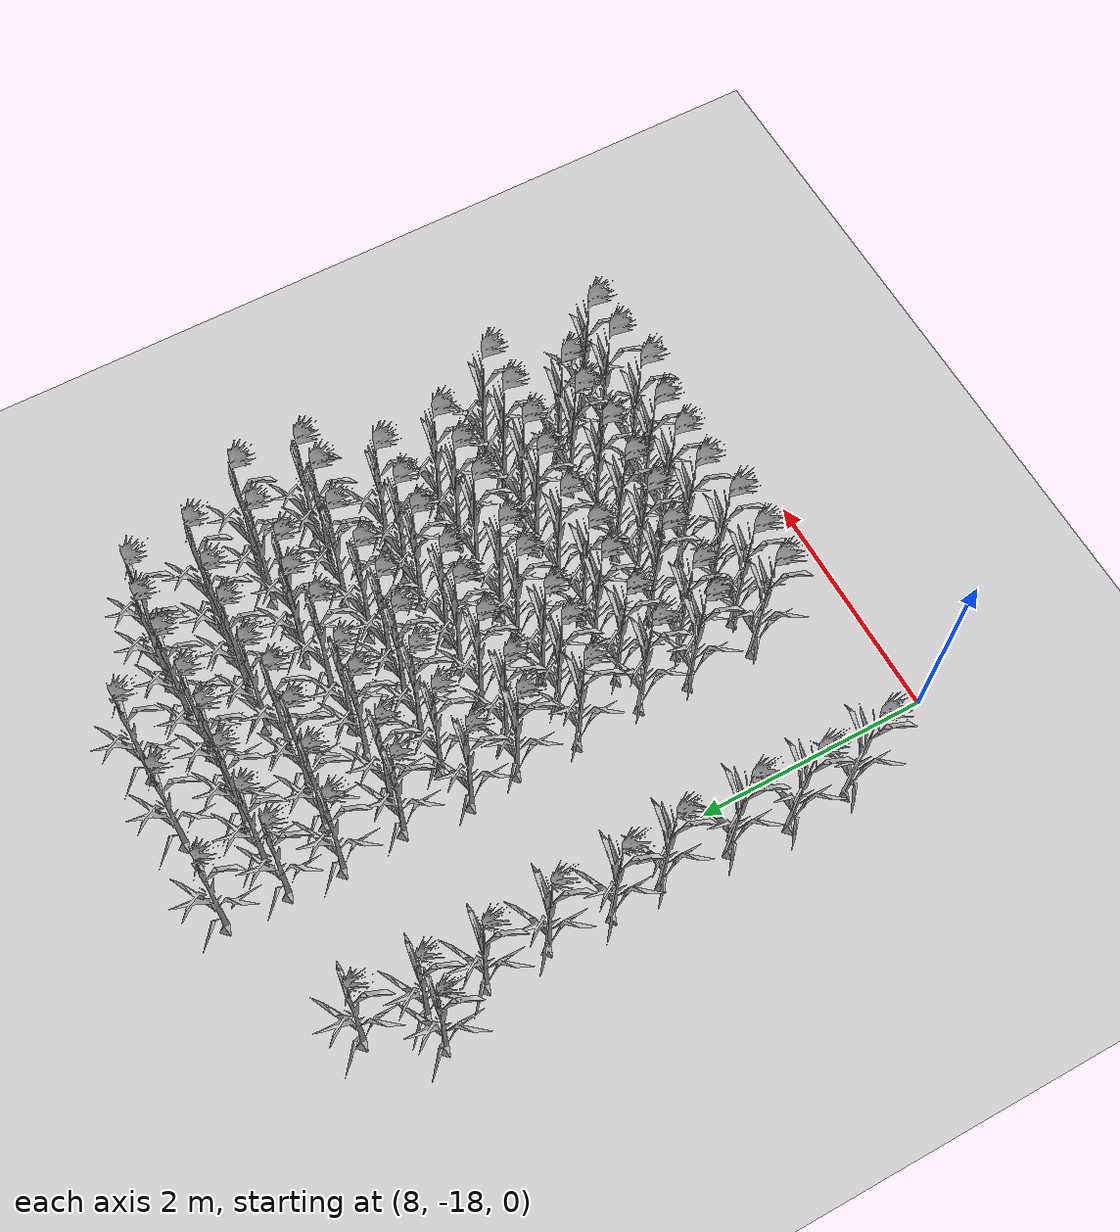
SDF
<sdf version="1.7">
 <world name="farmland_world">
  <model name="ground_plane">
   <static>1</static>
   <link name="link">
    <collision name="collision">
     <geometry><plane><normal>0 0 1</normal><size>40.0 40.0</size></plane></geometry>
     <surface><friction><ode><mu>100</mu><mu2>50</mu2></ode></friction></surface>
    </collision>
    <visual name="visual">
     <cast_shadows>0</cast_shadows>
     <geometry><plane><normal>0 0 1</normal><size>40.0 40.0</size></plane></geometry>
     <material>
      <script><uri>file://media/materials/scripts/gazebo.material</uri><name>Gazebo/Grey</name></script>
     </material>
    </visual>
   </link>
  </model>
  <model name="tree_3_1103">
   <static>1</static>
   <link name="link">
    <collision name="collision">
     <geometry><mesh><uri>model://Corn_low_poly/corn.obj</uri><scale>1 1 1</scale></mesh></geometry>
     <surface><friction><ode><mu>100</mu><mu2>50</mu2></ode></friction></surface>
    </collision>
    <visual name="visual">
     <geometry><mesh><uri>model://Corn_low_poly/corn.obj</uri><scale>1 1 1</scale></mesh></geometry>
    </visual>
   </link>
   <pose>7.378701759902179 -13.38830143295953 0 0 0 0</pose>
  </model>
  <model name="tree_3_1128">
   <static>1</static>
   <link name="link">
    <collision name="collision">
     <geometry><mesh><uri>model://Corn_low_poly/corn.obj</uri><scale>1 1 1</scale></mesh></geometry>
     <surface><friction><ode><mu>100</mu><mu2>50</mu2></ode></friction></surface>
    </collision>
    <visual name="visual">
     <geometry><mesh><uri>model://Corn_low_poly/corn.obj</uri><scale>1 1 1</scale></mesh></geometry>
    </visual>
   </link>
   <pose>7.702923000557419 -12.87638880298107 0 0 0 0</pose>
  </model>
  <model name="tree_3_1129">
   <static>1</static>
   <link name="link">
    <collision name="collision">
     <geometry><mesh><uri>model://Corn_low_poly/corn.obj</uri><scale>1 1 1</scale></mesh></geometry>
     <surface><friction><ode><mu>100</mu><mu2>50</mu2></ode></friction></surface>
    </collision>
    <visual name="visual">
     <geometry><mesh><uri>model://Corn_low_poly/corn.obj</uri><scale>1 1 1</scale></mesh></geometry>
    </visual>
   </link>
   <pose>7.64932809277339 -13.379077865878632 0 0 0 0</pose>
  </model>
  <model name="tree_3_1130">
   <static>1</static>
   <link name="link">
    <collision name="collision">
     <geometry><mesh><uri>model://Corn_low_poly/corn.obj</uri><scale>1 1 1</scale></mesh></geometry>
     <surface><friction><ode><mu>100</mu><mu2>50</mu2></ode></friction></surface>
    </collision>
    <visual name="visual">
     <geometry><mesh><uri>model://Corn_low_poly/corn.obj</uri><scale>1 1 1</scale></mesh></geometry>
    </visual>
   </link>
   <pose>7.63975142342553 -13.864861986941253 0 0 0 0</pose>
  </model>
  <model name="tree_3_1131">
   <static>1</static>
   <link name="link">
    <collision name="collision">
     <geometry><mesh><uri>model://Corn_low_poly/corn.obj</uri><scale>1 1 1</scale></mesh></geometry>
     <surface><friction><ode><mu>100</mu><mu2>50</mu2></ode></friction></surface>
    </collision>
    <visual name="visual">
     <geometry><mesh><uri>model://Corn_low_poly/corn.obj</uri><scale>1 1 1</scale></mesh></geometry>
    </visual>
   </link>
   <pose>7.671853378144586 -14.407517251463815 0 0 0 0</pose>
  </model>
  <model name="tree_3_1132">
   <static>1</static>
   <link name="link">
    <collision name="collision">
     <geometry><mesh><uri>model://Corn_low_poly/corn.obj</uri><scale>1 1 1</scale></mesh></geometry>
     <surface><friction><ode><mu>100</mu><mu2>50</mu2></ode></friction></surface>
    </collision>
    <visual name="visual">
     <geometry><mesh><uri>model://Corn_low_poly/corn.obj</uri><scale>1 1 1</scale></mesh></geometry>
    </visual>
   </link>
   <pose>7.659769551763717 -14.954185597951474 0 0 0 0</pose>
  </model>
  <model name="tree_3_1133">
   <static>1</static>
   <link name="link">
    <collision name="collision">
     <geometry><mesh><uri>model://Corn_low_poly/corn.obj</uri><scale>1 1 1</scale></mesh></geometry>
     <surface><friction><ode><mu>100</mu><mu2>50</mu2></ode></friction></surface>
    </collision>
    <visual name="visual">
     <geometry><mesh><uri>model://Corn_low_poly/corn.obj</uri><scale>1 1 1</scale></mesh></geometry>
    </visual>
   </link>
   <pose>7.700983458582436 -15.406346957540874 0 0 0 0</pose>
  </model>
  <model name="tree_3_1134">
   <static>1</static>
   <link name="link">
    <collision name="collision">
     <geometry><mesh><uri>model://Corn_low_poly/corn.obj</uri><scale>1 1 1</scale></mesh></geometry>
     <surface><friction><ode><mu>100</mu><mu2>50</mu2></ode></friction></surface>
    </collision>
    <visual name="visual">
     <geometry><mesh><uri>model://Corn_low_poly/corn.obj</uri><scale>1 1 1</scale></mesh></geometry>
    </visual>
   </link>
   <pose>7.678627286567806 -15.99333415270029 0 0 0 0</pose>
  </model>
  <model name="tree_3_1135">
   <static>1</static>
   <link name="link">
    <collision name="collision">
     <geometry><mesh><uri>model://Corn_low_poly/corn.obj</uri><scale>1 1 1</scale></mesh></geometry>
     <surface><friction><ode><mu>100</mu><mu2>50</mu2></ode></friction></surface>
    </collision>
    <visual name="visual">
     <geometry><mesh><uri>model://Corn_low_poly/corn.obj</uri><scale>1 1 1</scale></mesh></geometry>
    </visual>
   </link>
   <pose>7.630147635207661 -16.50651556029148 0 0 0 0</pose>
  </model>
  <model name="tree_3_1136">
   <static>1</static>
   <link name="link">
    <collision name="collision">
     <geometry><mesh><uri>model://Corn_low_poly/corn.obj</uri><scale>1 1 1</scale></mesh></geometry>
     <surface><friction><ode><mu>100</mu><mu2>50</mu2></ode></friction></surface>
    </collision>
    <visual name="visual">
     <geometry><mesh><uri>model://Corn_low_poly/corn.obj</uri><scale>1 1 1</scale></mesh></geometry>
    </visual>
   </link>
   <pose>7.649749195636984 -17.03707129243802 0 0 0 0</pose>
  </model>
  <model name="tree_3_1153">
   <static>1</static>
   <link name="link">
    <collision name="collision">
     <geometry><mesh><uri>model://Corn_low_poly/corn.obj</uri><scale>1 1 1</scale></mesh></geometry>
     <surface><friction><ode><mu>100</mu><mu2>50</mu2></ode></friction></surface>
    </collision>
    <visual name="visual">
     <geometry><mesh><uri>model://Corn_low_poly/corn.obj</uri><scale>1 1 1</scale></mesh></geometry>
    </visual>
   </link>
   <pose>8.975586912585443 -12.362388512783566 0 0 0 0</pose>
  </model>
  <model name="tree_3_1154">
   <static>1</static>
   <link name="link">
    <collision name="collision">
     <geometry><mesh><uri>model://Corn_low_poly/corn.obj</uri><scale>1 1 1</scale></mesh></geometry>
     <surface><friction><ode><mu>100</mu><mu2>50</mu2></ode></friction></surface>
    </collision>
    <visual name="visual">
     <geometry><mesh><uri>model://Corn_low_poly/corn.obj</uri><scale>1 1 1</scale></mesh></geometry>
    </visual>
   </link>
   <pose>8.978883979321976 -12.882479470782153 0 0 0 0</pose>
  </model>
  <model name="tree_3_1155">
   <static>1</static>
   <link name="link">
    <collision name="collision">
     <geometry><mesh><uri>model://Corn_low_poly/corn.obj</uri><scale>1 1 1</scale></mesh></geometry>
     <surface><friction><ode><mu>100</mu><mu2>50</mu2></ode></friction></surface>
    </collision>
    <visual name="visual">
     <geometry><mesh><uri>model://Corn_low_poly/corn.obj</uri><scale>1 1 1</scale></mesh></geometry>
    </visual>
   </link>
   <pose>8.95248846145552 -13.33096620263656 0 0 0 0</pose>
  </model>
  <model name="tree_3_1156">
   <static>1</static>
   <link name="link">
    <collision name="collision">
     <geometry><mesh><uri>model://Corn_low_poly/corn.obj</uri><scale>1 1 1</scale></mesh></geometry>
     <surface><friction><ode><mu>100</mu><mu2>50</mu2></ode></friction></surface>
    </collision>
    <visual name="visual">
     <geometry><mesh><uri>model://Corn_low_poly/corn.obj</uri><scale>1 1 1</scale></mesh></geometry>
    </visual>
   </link>
   <pose>9.00575841853645 -13.875872442490412 0 0 0 0</pose>
  </model>
  <model name="tree_3_1157">
   <static>1</static>
   <link name="link">
    <collision name="collision">
     <geometry><mesh><uri>model://Corn_low_poly/corn.obj</uri><scale>1 1 1</scale></mesh></geometry>
     <surface><friction><ode><mu>100</mu><mu2>50</mu2></ode></friction></surface>
    </collision>
    <visual name="visual">
     <geometry><mesh><uri>model://Corn_low_poly/corn.obj</uri><scale>1 1 1</scale></mesh></geometry>
    </visual>
   </link>
   <pose>8.951890482372919 -14.437300516262798 0 0 0 0</pose>
  </model>
  <model name="tree_3_1158">
   <static>1</static>
   <link name="link">
    <collision name="collision">
     <geometry><mesh><uri>model://Corn_low_poly/corn.obj</uri><scale>1 1 1</scale></mesh></geometry>
     <surface><friction><ode><mu>100</mu><mu2>50</mu2></ode></friction></surface>
    </collision>
    <visual name="visual">
     <geometry><mesh><uri>model://Corn_low_poly/corn.obj</uri><scale>1 1 1</scale></mesh></geometry>
    </visual>
   </link>
   <pose>9.008591688866538 -14.870986380184416 0 0 0 0</pose>
  </model>
  <model name="tree_3_1159">
   <static>1</static>
   <link name="link">
    <collision name="collision">
     <geometry><mesh><uri>model://Corn_low_poly/corn.obj</uri><scale>1 1 1</scale></mesh></geometry>
     <surface><friction><ode><mu>100</mu><mu2>50</mu2></ode></friction></surface>
    </collision>
    <visual name="visual">
     <geometry><mesh><uri>model://Corn_low_poly/corn.obj</uri><scale>1 1 1</scale></mesh></geometry>
    </visual>
   </link>
   <pose>9.004525325089675 -15.415883972888365 0 0 0 0</pose>
  </model>
  <model name="tree_3_1160">
   <static>1</static>
   <link name="link">
    <collision name="collision">
     <geometry><mesh><uri>model://Corn_low_poly/corn.obj</uri><scale>1 1 1</scale></mesh></geometry>
     <surface><friction><ode><mu>100</mu><mu2>50</mu2></ode></friction></surface>
    </collision>
    <visual name="visual">
     <geometry><mesh><uri>model://Corn_low_poly/corn.obj</uri><scale>1 1 1</scale></mesh></geometry>
    </visual>
   </link>
   <pose>9.040939664613214 -16.000283766380416 0 0 0 0</pose>
  </model>
  <model name="tree_3_1161">
   <static>1</static>
   <link name="link">
    <collision name="collision">
     <geometry><mesh><uri>model://Corn_low_poly/corn.obj</uri><scale>1 1 1</scale></mesh></geometry>
     <surface><friction><ode><mu>100</mu><mu2>50</mu2></ode></friction></surface>
    </collision>
    <visual name="visual">
     <geometry><mesh><uri>model://Corn_low_poly/corn.obj</uri><scale>1 1 1</scale></mesh></geometry>
    </visual>
   </link>
   <pose>9.025168318386138 -16.441049287200546 0 0 0 0</pose>
  </model>
  <model name="tree_3_1162">
   <static>1</static>
   <link name="link">
    <collision name="collision">
     <geometry><mesh><uri>model://Corn_low_poly/corn.obj</uri><scale>1 1 1</scale></mesh></geometry>
     <surface><friction><ode><mu>100</mu><mu2>50</mu2></ode></friction></surface>
    </collision>
    <visual name="visual">
     <geometry><mesh><uri>model://Corn_low_poly/corn.obj</uri><scale>1 1 1</scale></mesh></geometry>
    </visual>
   </link>
   <pose>9.030153301210214 -17.037372775325718 0 0 0 0</pose>
  </model>
  <model name="tree_3_1180">
   <static>1</static>
   <link name="link">
    <collision name="collision">
     <geometry><mesh><uri>model://Corn_low_poly/corn.obj</uri><scale>1 1 1</scale></mesh></geometry>
     <surface><friction><ode><mu>100</mu><mu2>50</mu2></ode></friction></surface>
    </collision>
    <visual name="visual">
     <geometry><mesh><uri>model://Corn_low_poly/corn.obj</uri><scale>1 1 1</scale></mesh></geometry>
    </visual>
   </link>
   <pose>9.291330220509577 -12.833845377604957 0 0 0 0</pose>
  </model>
  <model name="tree_3_1181">
   <static>1</static>
   <link name="link">
    <collision name="collision">
     <geometry><mesh><uri>model://Corn_low_poly/corn.obj</uri><scale>1 1 1</scale></mesh></geometry>
     <surface><friction><ode><mu>100</mu><mu2>50</mu2></ode></friction></surface>
    </collision>
    <visual name="visual">
     <geometry><mesh><uri>model://Corn_low_poly/corn.obj</uri><scale>1 1 1</scale></mesh></geometry>
    </visual>
   </link>
   <pose>9.345753882591662 -13.36934704679387 0 0 0 0</pose>
  </model>
  <model name="tree_3_1182">
   <static>1</static>
   <link name="link">
    <collision name="collision">
     <geometry><mesh><uri>model://Corn_low_poly/corn.obj</uri><scale>1 1 1</scale></mesh></geometry>
     <surface><friction><ode><mu>100</mu><mu2>50</mu2></ode></friction></surface>
    </collision>
    <visual name="visual">
     <geometry><mesh><uri>model://Corn_low_poly/corn.obj</uri><scale>1 1 1</scale></mesh></geometry>
    </visual>
   </link>
   <pose>9.303003250301266 -13.909716582781176 0 0 0 0</pose>
  </model>
  <model name="tree_3_1183">
   <static>1</static>
   <link name="link">
    <collision name="collision">
     <geometry><mesh><uri>model://Corn_low_poly/corn.obj</uri><scale>1 1 1</scale></mesh></geometry>
     <surface><friction><ode><mu>100</mu><mu2>50</mu2></ode></friction></surface>
    </collision>
    <visual name="visual">
     <geometry><mesh><uri>model://Corn_low_poly/corn.obj</uri><scale>1 1 1</scale></mesh></geometry>
    </visual>
   </link>
   <pose>9.322143877949594 -14.361908686777012 0 0 0 0</pose>
  </model>
  <model name="tree_3_1184">
   <static>1</static>
   <link name="link">
    <collision name="collision">
     <geometry><mesh><uri>model://Corn_low_poly/corn.obj</uri><scale>1 1 1</scale></mesh></geometry>
     <surface><friction><ode><mu>100</mu><mu2>50</mu2></ode></friction></surface>
    </collision>
    <visual name="visual">
     <geometry><mesh><uri>model://Corn_low_poly/corn.obj</uri><scale>1 1 1</scale></mesh></geometry>
    </visual>
   </link>
   <pose>9.302707706335825 -14.931337907866308 0 0 0 0</pose>
  </model>
  <model name="tree_3_1185">
   <static>1</static>
   <link name="link">
    <collision name="collision">
     <geometry><mesh><uri>model://Corn_low_poly/corn.obj</uri><scale>1 1 1</scale></mesh></geometry>
     <surface><friction><ode><mu>100</mu><mu2>50</mu2></ode></friction></surface>
    </collision>
    <visual name="visual">
     <geometry><mesh><uri>model://Corn_low_poly/corn.obj</uri><scale>1 1 1</scale></mesh></geometry>
    </visual>
   </link>
   <pose>9.362608397021965 -15.43238439574567 0 0 0 0</pose>
  </model>
  <model name="tree_3_1186">
   <static>1</static>
   <link name="link">
    <collision name="collision">
     <geometry><mesh><uri>model://Corn_low_poly/corn.obj</uri><scale>1 1 1</scale></mesh></geometry>
     <surface><friction><ode><mu>100</mu><mu2>50</mu2></ode></friction></surface>
    </collision>
    <visual name="visual">
     <geometry><mesh><uri>model://Corn_low_poly/corn.obj</uri><scale>1 1 1</scale></mesh></geometry>
    </visual>
   </link>
   <pose>9.34573784460411 -15.963516921287644 0 0 0 0</pose>
  </model>
  <model name="tree_3_1187">
   <static>1</static>
   <link name="link">
    <collision name="collision">
     <geometry><mesh><uri>model://Corn_low_poly/corn.obj</uri><scale>1 1 1</scale></mesh></geometry>
     <surface><friction><ode><mu>100</mu><mu2>50</mu2></ode></friction></surface>
    </collision>
    <visual name="visual">
     <geometry><mesh><uri>model://Corn_low_poly/corn.obj</uri><scale>1 1 1</scale></mesh></geometry>
    </visual>
   </link>
   <pose>9.301625487395604 -16.496236525934833 0 0 0 0</pose>
  </model>
  <model name="tree_3_1188">
   <static>1</static>
   <link name="link">
    <collision name="collision">
     <geometry><mesh><uri>model://Corn_low_poly/corn.obj</uri><scale>1 1 1</scale></mesh></geometry>
     <surface><friction><ode><mu>100</mu><mu2>50</mu2></ode></friction></surface>
    </collision>
    <visual name="visual">
     <geometry><mesh><uri>model://Corn_low_poly/corn.obj</uri><scale>1 1 1</scale></mesh></geometry>
    </visual>
   </link>
   <pose>9.337785703948304 -17.043964450039102 0 0 0 0</pose>
  </model>
  <model name="tree_3_1205">
   <static>1</static>
   <link name="link">
    <collision name="collision">
     <geometry><mesh><uri>model://Corn_low_poly/corn.obj</uri><scale>1 1 1</scale></mesh></geometry>
     <surface><friction><ode><mu>100</mu><mu2>50</mu2></ode></friction></surface>
    </collision>
    <visual name="visual">
     <geometry><mesh><uri>model://Corn_low_poly/corn.obj</uri><scale>1 1 1</scale></mesh></geometry>
    </visual>
   </link>
   <pose>9.719776114390806 -12.357959841589789 0 0 0 0</pose>
  </model>
  <model name="tree_3_1206">
   <static>1</static>
   <link name="link">
    <collision name="collision">
     <geometry><mesh><uri>model://Corn_low_poly/corn.obj</uri><scale>1 1 1</scale></mesh></geometry>
     <surface><friction><ode><mu>100</mu><mu2>50</mu2></ode></friction></surface>
    </collision>
    <visual name="visual">
     <geometry><mesh><uri>model://Corn_low_poly/corn.obj</uri><scale>1 1 1</scale></mesh></geometry>
    </visual>
   </link>
   <pose>9.657729673701187 -12.83947844691618 0 0 0 0</pose>
  </model>
  <model name="tree_3_1207">
   <static>1</static>
   <link name="link">
    <collision name="collision">
     <geometry><mesh><uri>model://Corn_low_poly/corn.obj</uri><scale>1 1 1</scale></mesh></geometry>
     <surface><friction><ode><mu>100</mu><mu2>50</mu2></ode></friction></surface>
    </collision>
    <visual name="visual">
     <geometry><mesh><uri>model://Corn_low_poly/corn.obj</uri><scale>1 1 1</scale></mesh></geometry>
    </visual>
   </link>
   <pose>9.715019103552539 -13.401588764188242 0 0 0 0</pose>
  </model>
  <model name="tree_3_1208">
   <static>1</static>
   <link name="link">
    <collision name="collision">
     <geometry><mesh><uri>model://Corn_low_poly/corn.obj</uri><scale>1 1 1</scale></mesh></geometry>
     <surface><friction><ode><mu>100</mu><mu2>50</mu2></ode></friction></surface>
    </collision>
    <visual name="visual">
     <geometry><mesh><uri>model://Corn_low_poly/corn.obj</uri><scale>1 1 1</scale></mesh></geometry>
    </visual>
   </link>
   <pose>9.716801871659479 -13.913959102238339 0 0 0 0</pose>
  </model>
  <model name="tree_3_1209">
   <static>1</static>
   <link name="link">
    <collision name="collision">
     <geometry><mesh><uri>model://Corn_low_poly/corn.obj</uri><scale>1 1 1</scale></mesh></geometry>
     <surface><friction><ode><mu>100</mu><mu2>50</mu2></ode></friction></surface>
    </collision>
    <visual name="visual">
     <geometry><mesh><uri>model://Corn_low_poly/corn.obj</uri><scale>1 1 1</scale></mesh></geometry>
    </visual>
   </link>
   <pose>9.681149209510716 -14.37191004799527 0 0 0 0</pose>
  </model>
  <model name="tree_3_1210">
   <static>1</static>
   <link name="link">
    <collision name="collision">
     <geometry><mesh><uri>model://Corn_low_poly/corn.obj</uri><scale>1 1 1</scale></mesh></geometry>
     <surface><friction><ode><mu>100</mu><mu2>50</mu2></ode></friction></surface>
    </collision>
    <visual name="visual">
     <geometry><mesh><uri>model://Corn_low_poly/corn.obj</uri><scale>1 1 1</scale></mesh></geometry>
    </visual>
   </link>
   <pose>9.679436515067644 -14.914865474652409 0 0 0 0</pose>
  </model>
  <model name="tree_3_1211">
   <static>1</static>
   <link name="link">
    <collision name="collision">
     <geometry><mesh><uri>model://Corn_low_poly/corn.obj</uri><scale>1 1 1</scale></mesh></geometry>
     <surface><friction><ode><mu>100</mu><mu2>50</mu2></ode></friction></surface>
    </collision>
    <visual name="visual">
     <geometry><mesh><uri>model://Corn_low_poly/corn.obj</uri><scale>1 1 1</scale></mesh></geometry>
    </visual>
   </link>
   <pose>9.632794775832346 -15.441726402389005 0 0 0 0</pose>
  </model>
  <model name="tree_3_1212">
   <static>1</static>
   <link name="link">
    <collision name="collision">
     <geometry><mesh><uri>model://Corn_low_poly/corn.obj</uri><scale>1 1 1</scale></mesh></geometry>
     <surface><friction><ode><mu>100</mu><mu2>50</mu2></ode></friction></surface>
    </collision>
    <visual name="visual">
     <geometry><mesh><uri>model://Corn_low_poly/corn.obj</uri><scale>1 1 1</scale></mesh></geometry>
    </visual>
   </link>
   <pose>9.690469816799082 -15.949957015310028 0 0 0 0</pose>
  </model>
  <model name="tree_3_1213">
   <static>1</static>
   <link name="link">
    <collision name="collision">
     <geometry><mesh><uri>model://Corn_low_poly/corn.obj</uri><scale>1 1 1</scale></mesh></geometry>
     <surface><friction><ode><mu>100</mu><mu2>50</mu2></ode></friction></surface>
    </collision>
    <visual name="visual">
     <geometry><mesh><uri>model://Corn_low_poly/corn.obj</uri><scale>1 1 1</scale></mesh></geometry>
    </visual>
   </link>
   <pose>9.681412974715126 -16.46288133095108 0 0 0 0</pose>
  </model>
  <model name="tree_3_1214">
   <static>1</static>
   <link name="link">
    <collision name="collision">
     <geometry><mesh><uri>model://Corn_low_poly/corn.obj</uri><scale>1 1 1</scale></mesh></geometry>
     <surface><friction><ode><mu>100</mu><mu2>50</mu2></ode></friction></surface>
    </collision>
    <visual name="visual">
     <geometry><mesh><uri>model://Corn_low_poly/corn.obj</uri><scale>1 1 1</scale></mesh></geometry>
    </visual>
   </link>
   <pose>9.681944578541158 -17.043923196566908 0 0 0 0</pose>
  </model>
  <model name="tree_3_1232">
   <static>1</static>
   <link name="link">
    <collision name="collision">
     <geometry><mesh><uri>model://Corn_low_poly/corn.obj</uri><scale>1 1 1</scale></mesh></geometry>
     <surface><friction><ode><mu>100</mu><mu2>50</mu2></ode></friction></surface>
    </collision>
    <visual name="visual">
     <geometry><mesh><uri>model://Corn_low_poly/corn.obj</uri><scale>1 1 1</scale></mesh></geometry>
    </visual>
   </link>
   <pose>9.998616454929936 -12.856486062136586 0 0 0 0</pose>
  </model>
  <model name="tree_3_1233">
   <static>1</static>
   <link name="link">
    <collision name="collision">
     <geometry><mesh><uri>model://Corn_low_poly/corn.obj</uri><scale>1 1 1</scale></mesh></geometry>
     <surface><friction><ode><mu>100</mu><mu2>50</mu2></ode></friction></surface>
    </collision>
    <visual name="visual">
     <geometry><mesh><uri>model://Corn_low_poly/corn.obj</uri><scale>1 1 1</scale></mesh></geometry>
    </visual>
   </link>
   <pose>10.043198690969216 -13.398301008086223 0 0 0 0</pose>
  </model>
  <model name="tree_3_1234">
   <static>1</static>
   <link name="link">
    <collision name="collision">
     <geometry><mesh><uri>model://Corn_low_poly/corn.obj</uri><scale>1 1 1</scale></mesh></geometry>
     <surface><friction><ode><mu>100</mu><mu2>50</mu2></ode></friction></surface>
    </collision>
    <visual name="visual">
     <geometry><mesh><uri>model://Corn_low_poly/corn.obj</uri><scale>1 1 1</scale></mesh></geometry>
    </visual>
   </link>
   <pose>9.971413661608134 -13.920841385990373 0 0 0 0</pose>
  </model>
  <model name="tree_3_1235">
   <static>1</static>
   <link name="link">
    <collision name="collision">
     <geometry><mesh><uri>model://Corn_low_poly/corn.obj</uri><scale>1 1 1</scale></mesh></geometry>
     <surface><friction><ode><mu>100</mu><mu2>50</mu2></ode></friction></surface>
    </collision>
    <visual name="visual">
     <geometry><mesh><uri>model://Corn_low_poly/corn.obj</uri><scale>1 1 1</scale></mesh></geometry>
    </visual>
   </link>
   <pose>10.022751569600507 -14.405204276917376 0 0 0 0</pose>
  </model>
  <model name="tree_3_1236">
   <static>1</static>
   <link name="link">
    <collision name="collision">
     <geometry><mesh><uri>model://Corn_low_poly/corn.obj</uri><scale>1 1 1</scale></mesh></geometry>
     <surface><friction><ode><mu>100</mu><mu2>50</mu2></ode></friction></surface>
    </collision>
    <visual name="visual">
     <geometry><mesh><uri>model://Corn_low_poly/corn.obj</uri><scale>1 1 1</scale></mesh></geometry>
    </visual>
   </link>
   <pose>10.020232602866686 -14.904912444028811 0 0 0 0</pose>
  </model>
  <model name="tree_3_1237">
   <static>1</static>
   <link name="link">
    <collision name="collision">
     <geometry><mesh><uri>model://Corn_low_poly/corn.obj</uri><scale>1 1 1</scale></mesh></geometry>
     <surface><friction><ode><mu>100</mu><mu2>50</mu2></ode></friction></surface>
    </collision>
    <visual name="visual">
     <geometry><mesh><uri>model://Corn_low_poly/corn.obj</uri><scale>1 1 1</scale></mesh></geometry>
    </visual>
   </link>
   <pose>10.00151311310209 -15.413168248070386 0 0 0 0</pose>
  </model>
  <model name="tree_3_1238">
   <static>1</static>
   <link name="link">
    <collision name="collision">
     <geometry><mesh><uri>model://Corn_low_poly/corn.obj</uri><scale>1 1 1</scale></mesh></geometry>
     <surface><friction><ode><mu>100</mu><mu2>50</mu2></ode></friction></surface>
    </collision>
    <visual name="visual">
     <geometry><mesh><uri>model://Corn_low_poly/corn.obj</uri><scale>1 1 1</scale></mesh></geometry>
    </visual>
   </link>
   <pose>9.955963310983963 -15.992381229818935 0 0 0 0</pose>
  </model>
  <model name="tree_3_1239">
   <static>1</static>
   <link name="link">
    <collision name="collision">
     <geometry><mesh><uri>model://Corn_low_poly/corn.obj</uri><scale>1 1 1</scale></mesh></geometry>
     <surface><friction><ode><mu>100</mu><mu2>50</mu2></ode></friction></surface>
    </collision>
    <visual name="visual">
     <geometry><mesh><uri>model://Corn_low_poly/corn.obj</uri><scale>1 1 1</scale></mesh></geometry>
    </visual>
   </link>
   <pose>10.016162681959523 -16.52963999753397 0 0 0 0</pose>
  </model>
  <model name="tree_3_1240">
   <static>1</static>
   <link name="link">
    <collision name="collision">
     <geometry><mesh><uri>model://Corn_low_poly/corn.obj</uri><scale>1 1 1</scale></mesh></geometry>
     <surface><friction><ode><mu>100</mu><mu2>50</mu2></ode></friction></surface>
    </collision>
    <visual name="visual">
     <geometry><mesh><uri>model://Corn_low_poly/corn.obj</uri><scale>1 1 1</scale></mesh></geometry>
    </visual>
   </link>
   <pose>10.0262666257036 -16.95803157726904 0 0 0 0</pose>
  </model>
  <model name="tree_3_1257">
   <static>1</static>
   <link name="link">
    <collision name="collision">
     <geometry><mesh><uri>model://Corn_low_poly/corn.obj</uri><scale>1 1 1</scale></mesh></geometry>
     <surface><friction><ode><mu>100</mu><mu2>50</mu2></ode></friction></surface>
    </collision>
    <visual name="visual">
     <geometry><mesh><uri>model://Corn_low_poly/corn.obj</uri><scale>1 1 1</scale></mesh></geometry>
    </visual>
   </link>
   <pose>10.341827796272945 -12.353889810509028 0 0 0 0</pose>
  </model>
  <model name="tree_3_1258">
   <static>1</static>
   <link name="link">
    <collision name="collision">
     <geometry><mesh><uri>model://Corn_low_poly/corn.obj</uri><scale>1 1 1</scale></mesh></geometry>
     <surface><friction><ode><mu>100</mu><mu2>50</mu2></ode></friction></surface>
    </collision>
    <visual name="visual">
     <geometry><mesh><uri>model://Corn_low_poly/corn.obj</uri><scale>1 1 1</scale></mesh></geometry>
    </visual>
   </link>
   <pose>10.296207072787684 -12.844282392834812 0 0 0 0</pose>
  </model>
  <model name="tree_3_1259">
   <static>1</static>
   <link name="link">
    <collision name="collision">
     <geometry><mesh><uri>model://Corn_low_poly/corn.obj</uri><scale>1 1 1</scale></mesh></geometry>
     <surface><friction><ode><mu>100</mu><mu2>50</mu2></ode></friction></surface>
    </collision>
    <visual name="visual">
     <geometry><mesh><uri>model://Corn_low_poly/corn.obj</uri><scale>1 1 1</scale></mesh></geometry>
    </visual>
   </link>
   <pose>10.302016931765854 -13.327006501012418 0 0 0 0</pose>
  </model>
  <model name="tree_3_1260">
   <static>1</static>
   <link name="link">
    <collision name="collision">
     <geometry><mesh><uri>model://Corn_low_poly/corn.obj</uri><scale>1 1 1</scale></mesh></geometry>
     <surface><friction><ode><mu>100</mu><mu2>50</mu2></ode></friction></surface>
    </collision>
    <visual name="visual">
     <geometry><mesh><uri>model://Corn_low_poly/corn.obj</uri><scale>1 1 1</scale></mesh></geometry>
    </visual>
   </link>
   <pose>10.377016158447814 -13.9275828865109 0 0 0 0</pose>
  </model>
  <model name="tree_3_1261">
   <static>1</static>
   <link name="link">
    <collision name="collision">
     <geometry><mesh><uri>model://Corn_low_poly/corn.obj</uri><scale>1 1 1</scale></mesh></geometry>
     <surface><friction><ode><mu>100</mu><mu2>50</mu2></ode></friction></surface>
    </collision>
    <visual name="visual">
     <geometry><mesh><uri>model://Corn_low_poly/corn.obj</uri><scale>1 1 1</scale></mesh></geometry>
    </visual>
   </link>
   <pose>10.33256383477953 -14.434544517036903 0 0 0 0</pose>
  </model>
  <model name="tree_3_1262">
   <static>1</static>
   <link name="link">
    <collision name="collision">
     <geometry><mesh><uri>model://Corn_low_poly/corn.obj</uri><scale>1 1 1</scale></mesh></geometry>
     <surface><friction><ode><mu>100</mu><mu2>50</mu2></ode></friction></surface>
    </collision>
    <visual name="visual">
     <geometry><mesh><uri>model://Corn_low_poly/corn.obj</uri><scale>1 1 1</scale></mesh></geometry>
    </visual>
   </link>
   <pose>10.289665803360881 -14.93133813459558 0 0 0 0</pose>
  </model>
  <model name="tree_3_1263">
   <static>1</static>
   <link name="link">
    <collision name="collision">
     <geometry><mesh><uri>model://Corn_low_poly/corn.obj</uri><scale>1 1 1</scale></mesh></geometry>
     <surface><friction><ode><mu>100</mu><mu2>50</mu2></ode></friction></surface>
    </collision>
    <visual name="visual">
     <geometry><mesh><uri>model://Corn_low_poly/corn.obj</uri><scale>1 1 1</scale></mesh></geometry>
    </visual>
   </link>
   <pose>10.281224417163456 -15.420042105255254 0 0 0 0</pose>
  </model>
  <model name="tree_3_1264">
   <static>1</static>
   <link name="link">
    <collision name="collision">
     <geometry><mesh><uri>model://Corn_low_poly/corn.obj</uri><scale>1 1 1</scale></mesh></geometry>
     <surface><friction><ode><mu>100</mu><mu2>50</mu2></ode></friction></surface>
    </collision>
    <visual name="visual">
     <geometry><mesh><uri>model://Corn_low_poly/corn.obj</uri><scale>1 1 1</scale></mesh></geometry>
    </visual>
   </link>
   <pose>10.292648210656147 -15.946042814529132 0 0 0 0</pose>
  </model>
  <model name="tree_3_1265">
   <static>1</static>
   <link name="link">
    <collision name="collision">
     <geometry><mesh><uri>model://Corn_low_poly/corn.obj</uri><scale>1 1 1</scale></mesh></geometry>
     <surface><friction><ode><mu>100</mu><mu2>50</mu2></ode></friction></surface>
    </collision>
    <visual name="visual">
     <geometry><mesh><uri>model://Corn_low_poly/corn.obj</uri><scale>1 1 1</scale></mesh></geometry>
    </visual>
   </link>
   <pose>10.322281679996875 -16.516683371710037 0 0 0 0</pose>
  </model>
  <model name="tree_3_1266">
   <static>1</static>
   <link name="link">
    <collision name="collision">
     <geometry><mesh><uri>model://Corn_low_poly/corn.obj</uri><scale>1 1 1</scale></mesh></geometry>
     <surface><friction><ode><mu>100</mu><mu2>50</mu2></ode></friction></surface>
    </collision>
    <visual name="visual">
     <geometry><mesh><uri>model://Corn_low_poly/corn.obj</uri><scale>1 1 1</scale></mesh></geometry>
    </visual>
   </link>
   <pose>10.338745129035356 -16.95997258403757 0 0 0 0</pose>
  </model>
  <model name="tree_3_1284">
   <static>1</static>
   <link name="link">
    <collision name="collision">
     <geometry><mesh><uri>model://Corn_low_poly/corn.obj</uri><scale>1 1 1</scale></mesh></geometry>
     <surface><friction><ode><mu>100</mu><mu2>50</mu2></ode></friction></surface>
    </collision>
    <visual name="visual">
     <geometry><mesh><uri>model://Corn_low_poly/corn.obj</uri><scale>1 1 1</scale></mesh></geometry>
    </visual>
   </link>
   <pose>10.668020648116473 -12.82282002799339 0 0 0 0</pose>
  </model>
  <model name="tree_3_1285">
   <static>1</static>
   <link name="link">
    <collision name="collision">
     <geometry><mesh><uri>model://Corn_low_poly/corn.obj</uri><scale>1 1 1</scale></mesh></geometry>
     <surface><friction><ode><mu>100</mu><mu2>50</mu2></ode></friction></surface>
    </collision>
    <visual name="visual">
     <geometry><mesh><uri>model://Corn_low_poly/corn.obj</uri><scale>1 1 1</scale></mesh></geometry>
    </visual>
   </link>
   <pose>10.667282097230231 -13.333253920365813 0 0 0 0</pose>
  </model>
  <model name="tree_3_1286">
   <static>1</static>
   <link name="link">
    <collision name="collision">
     <geometry><mesh><uri>model://Corn_low_poly/corn.obj</uri><scale>1 1 1</scale></mesh></geometry>
     <surface><friction><ode><mu>100</mu><mu2>50</mu2></ode></friction></surface>
    </collision>
    <visual name="visual">
     <geometry><mesh><uri>model://Corn_low_poly/corn.obj</uri><scale>1 1 1</scale></mesh></geometry>
    </visual>
   </link>
   <pose>10.667837879630929 -13.847418599265838 0 0 0 0</pose>
  </model>
  <model name="tree_3_1287">
   <static>1</static>
   <link name="link">
    <collision name="collision">
     <geometry><mesh><uri>model://Corn_low_poly/corn.obj</uri><scale>1 1 1</scale></mesh></geometry>
     <surface><friction><ode><mu>100</mu><mu2>50</mu2></ode></friction></surface>
    </collision>
    <visual name="visual">
     <geometry><mesh><uri>model://Corn_low_poly/corn.obj</uri><scale>1 1 1</scale></mesh></geometry>
    </visual>
   </link>
   <pose>10.626113161333372 -14.405097279688885 0 0 0 0</pose>
  </model>
  <model name="tree_3_1288">
   <static>1</static>
   <link name="link">
    <collision name="collision">
     <geometry><mesh><uri>model://Corn_low_poly/corn.obj</uri><scale>1 1 1</scale></mesh></geometry>
     <surface><friction><ode><mu>100</mu><mu2>50</mu2></ode></friction></surface>
    </collision>
    <visual name="visual">
     <geometry><mesh><uri>model://Corn_low_poly/corn.obj</uri><scale>1 1 1</scale></mesh></geometry>
    </visual>
   </link>
   <pose>10.681448305601368 -14.896547203087486 0 0 0 0</pose>
  </model>
  <model name="tree_3_1289">
   <static>1</static>
   <link name="link">
    <collision name="collision">
     <geometry><mesh><uri>model://Corn_low_poly/corn.obj</uri><scale>1 1 1</scale></mesh></geometry>
     <surface><friction><ode><mu>100</mu><mu2>50</mu2></ode></friction></surface>
    </collision>
    <visual name="visual">
     <geometry><mesh><uri>model://Corn_low_poly/corn.obj</uri><scale>1 1 1</scale></mesh></geometry>
    </visual>
   </link>
   <pose>10.712334454606271 -15.427546657148117 0 0 0 0</pose>
  </model>
  <model name="tree_3_1290">
   <static>1</static>
   <link name="link">
    <collision name="collision">
     <geometry><mesh><uri>model://Corn_low_poly/corn.obj</uri><scale>1 1 1</scale></mesh></geometry>
     <surface><friction><ode><mu>100</mu><mu2>50</mu2></ode></friction></surface>
    </collision>
    <visual name="visual">
     <geometry><mesh><uri>model://Corn_low_poly/corn.obj</uri><scale>1 1 1</scale></mesh></geometry>
    </visual>
   </link>
   <pose>10.675721418342198 -15.959534690640307 0 0 0 0</pose>
  </model>
  <model name="tree_3_1291">
   <static>1</static>
   <link name="link">
    <collision name="collision">
     <geometry><mesh><uri>model://Corn_low_poly/corn.obj</uri><scale>1 1 1</scale></mesh></geometry>
     <surface><friction><ode><mu>100</mu><mu2>50</mu2></ode></friction></surface>
    </collision>
    <visual name="visual">
     <geometry><mesh><uri>model://Corn_low_poly/corn.obj</uri><scale>1 1 1</scale></mesh></geometry>
    </visual>
   </link>
   <pose>10.675827225114098 -16.52153140392732 0 0 0 0</pose>
  </model>
  <model name="tree_3_1292">
   <static>1</static>
   <link name="link">
    <collision name="collision">
     <geometry><mesh><uri>model://Corn_low_poly/corn.obj</uri><scale>1 1 1</scale></mesh></geometry>
     <surface><friction><ode><mu>100</mu><mu2>50</mu2></ode></friction></surface>
    </collision>
    <visual name="visual">
     <geometry><mesh><uri>model://Corn_low_poly/corn.obj</uri><scale>1 1 1</scale></mesh></geometry>
    </visual>
   </link>
   <pose>10.642399566455722 -16.962789873010227 0 0 0 0</pose>
  </model>
  <model name="tree_3_1310">
   <static>1</static>
   <link name="link">
    <collision name="collision">
     <geometry><mesh><uri>model://Corn_low_poly/corn.obj</uri><scale>1 1 1</scale></mesh></geometry>
     <surface><friction><ode><mu>100</mu><mu2>50</mu2></ode></friction></surface>
    </collision>
    <visual name="visual">
     <geometry><mesh><uri>model://Corn_low_poly/corn.obj</uri><scale>1 1 1</scale></mesh></geometry>
    </visual>
   </link>
   <pose>10.995923041658807 -12.805278231124678 0 0 0 0</pose>
  </model>
  <model name="tree_3_1311">
   <static>1</static>
   <link name="link">
    <collision name="collision">
     <geometry><mesh><uri>model://Corn_low_poly/corn.obj</uri><scale>1 1 1</scale></mesh></geometry>
     <surface><friction><ode><mu>100</mu><mu2>50</mu2></ode></friction></surface>
    </collision>
    <visual name="visual">
     <geometry><mesh><uri>model://Corn_low_poly/corn.obj</uri><scale>1 1 1</scale></mesh></geometry>
    </visual>
   </link>
   <pose>10.98195022007622 -13.348895900573126 0 0 0 0</pose>
  </model>
  <model name="tree_3_1312">
   <static>1</static>
   <link name="link">
    <collision name="collision">
     <geometry><mesh><uri>model://Corn_low_poly/corn.obj</uri><scale>1 1 1</scale></mesh></geometry>
     <surface><friction><ode><mu>100</mu><mu2>50</mu2></ode></friction></surface>
    </collision>
    <visual name="visual">
     <geometry><mesh><uri>model://Corn_low_poly/corn.obj</uri><scale>1 1 1</scale></mesh></geometry>
    </visual>
   </link>
   <pose>10.950557668765969 -13.918662813493203 0 0 0 0</pose>
  </model>
  <model name="tree_3_1313">
   <static>1</static>
   <link name="link">
    <collision name="collision">
     <geometry><mesh><uri>model://Corn_low_poly/corn.obj</uri><scale>1 1 1</scale></mesh></geometry>
     <surface><friction><ode><mu>100</mu><mu2>50</mu2></ode></friction></surface>
    </collision>
    <visual name="visual">
     <geometry><mesh><uri>model://Corn_low_poly/corn.obj</uri><scale>1 1 1</scale></mesh></geometry>
    </visual>
   </link>
   <pose>11.005611470227413 -14.362574663889843 0 0 0 0</pose>
  </model>
  <model name="tree_3_1314">
   <static>1</static>
   <link name="link">
    <collision name="collision">
     <geometry><mesh><uri>model://Corn_low_poly/corn.obj</uri><scale>1 1 1</scale></mesh></geometry>
     <surface><friction><ode><mu>100</mu><mu2>50</mu2></ode></friction></surface>
    </collision>
    <visual name="visual">
     <geometry><mesh><uri>model://Corn_low_poly/corn.obj</uri><scale>1 1 1</scale></mesh></geometry>
    </visual>
   </link>
   <pose>10.966857730414013 -14.903395642436914 0 0 0 0</pose>
  </model>
  <model name="tree_3_1315">
   <static>1</static>
   <link name="link">
    <collision name="collision">
     <geometry><mesh><uri>model://Corn_low_poly/corn.obj</uri><scale>1 1 1</scale></mesh></geometry>
     <surface><friction><ode><mu>100</mu><mu2>50</mu2></ode></friction></surface>
    </collision>
    <visual name="visual">
     <geometry><mesh><uri>model://Corn_low_poly/corn.obj</uri><scale>1 1 1</scale></mesh></geometry>
    </visual>
   </link>
   <pose>11.025657091268183 -15.428520911054136 0 0 0 0</pose>
  </model>
  <model name="tree_3_1316">
   <static>1</static>
   <link name="link">
    <collision name="collision">
     <geometry><mesh><uri>model://Corn_low_poly/corn.obj</uri><scale>1 1 1</scale></mesh></geometry>
     <surface><friction><ode><mu>100</mu><mu2>50</mu2></ode></friction></surface>
    </collision>
    <visual name="visual">
     <geometry><mesh><uri>model://Corn_low_poly/corn.obj</uri><scale>1 1 1</scale></mesh></geometry>
    </visual>
   </link>
   <pose>10.97048178367128 -15.994502888428753 0 0 0 0</pose>
  </model>
  <model name="tree_3_1317">
   <static>1</static>
   <link name="link">
    <collision name="collision">
     <geometry><mesh><uri>model://Corn_low_poly/corn.obj</uri><scale>1 1 1</scale></mesh></geometry>
     <surface><friction><ode><mu>100</mu><mu2>50</mu2></ode></friction></surface>
    </collision>
    <visual name="visual">
     <geometry><mesh><uri>model://Corn_low_poly/corn.obj</uri><scale>1 1 1</scale></mesh></geometry>
    </visual>
   </link>
   <pose>11.03455531536871 -16.48626514397708 0 0 0 0</pose>
  </model>
  <model name="tree_3_1318">
   <static>1</static>
   <link name="link">
    <collision name="collision">
     <geometry><mesh><uri>model://Corn_low_poly/corn.obj</uri><scale>1 1 1</scale></mesh></geometry>
     <surface><friction><ode><mu>100</mu><mu2>50</mu2></ode></friction></surface>
    </collision>
    <visual name="visual">
     <geometry><mesh><uri>model://Corn_low_poly/corn.obj</uri><scale>1 1 1</scale></mesh></geometry>
    </visual>
   </link>
   <pose>10.997333144123825 -17.04662832284129 0 0 0 0</pose>
  </model>
  <model name="tree_3_1336">
   <static>1</static>
   <link name="link">
    <collision name="collision">
     <geometry><mesh><uri>model://Corn_low_poly/corn.obj</uri><scale>1 1 1</scale></mesh></geometry>
     <surface><friction><ode><mu>100</mu><mu2>50</mu2></ode></friction></surface>
    </collision>
    <visual name="visual">
     <geometry><mesh><uri>model://Corn_low_poly/corn.obj</uri><scale>1 1 1</scale></mesh></geometry>
    </visual>
   </link>
   <pose>11.298047772283715 -12.862357000477115 0 0 0 0</pose>
  </model>
  <model name="tree_3_1337">
   <static>1</static>
   <link name="link">
    <collision name="collision">
     <geometry><mesh><uri>model://Corn_low_poly/corn.obj</uri><scale>1 1 1</scale></mesh></geometry>
     <surface><friction><ode><mu>100</mu><mu2>50</mu2></ode></friction></surface>
    </collision>
    <visual name="visual">
     <geometry><mesh><uri>model://Corn_low_poly/corn.obj</uri><scale>1 1 1</scale></mesh></geometry>
    </visual>
   </link>
   <pose>11.370262206159952 -13.381497764123983 0 0 0 0</pose>
  </model>
  <model name="tree_3_1338">
   <static>1</static>
   <link name="link">
    <collision name="collision">
     <geometry><mesh><uri>model://Corn_low_poly/corn.obj</uri><scale>1 1 1</scale></mesh></geometry>
     <surface><friction><ode><mu>100</mu><mu2>50</mu2></ode></friction></surface>
    </collision>
    <visual name="visual">
     <geometry><mesh><uri>model://Corn_low_poly/corn.obj</uri><scale>1 1 1</scale></mesh></geometry>
    </visual>
   </link>
   <pose>11.280467501368825 -13.848113830494176 0 0 0 0</pose>
  </model>
  <model name="tree_3_1339">
   <static>1</static>
   <link name="link">
    <collision name="collision">
     <geometry><mesh><uri>model://Corn_low_poly/corn.obj</uri><scale>1 1 1</scale></mesh></geometry>
     <surface><friction><ode><mu>100</mu><mu2>50</mu2></ode></friction></surface>
    </collision>
    <visual name="visual">
     <geometry><mesh><uri>model://Corn_low_poly/corn.obj</uri><scale>1 1 1</scale></mesh></geometry>
    </visual>
   </link>
   <pose>11.369487802934762 -14.410044663593476 0 0 0 0</pose>
  </model>
  <model name="tree_3_1340">
   <static>1</static>
   <link name="link">
    <collision name="collision">
     <geometry><mesh><uri>model://Corn_low_poly/corn.obj</uri><scale>1 1 1</scale></mesh></geometry>
     <surface><friction><ode><mu>100</mu><mu2>50</mu2></ode></friction></surface>
    </collision>
    <visual name="visual">
     <geometry><mesh><uri>model://Corn_low_poly/corn.obj</uri><scale>1 1 1</scale></mesh></geometry>
    </visual>
   </link>
   <pose>11.30179864687174 -14.901439542379004 0 0 0 0</pose>
  </model>
  <model name="tree_3_1341">
   <static>1</static>
   <link name="link">
    <collision name="collision">
     <geometry><mesh><uri>model://Corn_low_poly/corn.obj</uri><scale>1 1 1</scale></mesh></geometry>
     <surface><friction><ode><mu>100</mu><mu2>50</mu2></ode></friction></surface>
    </collision>
    <visual name="visual">
     <geometry><mesh><uri>model://Corn_low_poly/corn.obj</uri><scale>1 1 1</scale></mesh></geometry>
    </visual>
   </link>
   <pose>11.350410719111593 -15.424595794471351 0 0 0 0</pose>
  </model>
  <model name="tree_3_1342">
   <static>1</static>
   <link name="link">
    <collision name="collision">
     <geometry><mesh><uri>model://Corn_low_poly/corn.obj</uri><scale>1 1 1</scale></mesh></geometry>
     <surface><friction><ode><mu>100</mu><mu2>50</mu2></ode></friction></surface>
    </collision>
    <visual name="visual">
     <geometry><mesh><uri>model://Corn_low_poly/corn.obj</uri><scale>1 1 1</scale></mesh></geometry>
    </visual>
   </link>
   <pose>11.305116194578817 -16.005524287024215 0 0 0 0</pose>
  </model>
  <model name="tree_3_1343">
   <static>1</static>
   <link name="link">
    <collision name="collision">
     <geometry><mesh><uri>model://Corn_low_poly/corn.obj</uri><scale>1 1 1</scale></mesh></geometry>
     <surface><friction><ode><mu>100</mu><mu2>50</mu2></ode></friction></surface>
    </collision>
    <visual name="visual">
     <geometry><mesh><uri>model://Corn_low_poly/corn.obj</uri><scale>1 1 1</scale></mesh></geometry>
    </visual>
   </link>
   <pose>11.310319130194614 -16.524492442467192 0 0 0 0</pose>
  </model>
  <model name="tree_3_1344">
   <static>1</static>
   <link name="link">
    <collision name="collision">
     <geometry><mesh><uri>model://Corn_low_poly/corn.obj</uri><scale>1 1 1</scale></mesh></geometry>
     <surface><friction><ode><mu>100</mu><mu2>50</mu2></ode></friction></surface>
    </collision>
    <visual name="visual">
     <geometry><mesh><uri>model://Corn_low_poly/corn.obj</uri><scale>1 1 1</scale></mesh></geometry>
    </visual>
   </link>
   <pose>11.343559217508451 -16.964874119476093 0 0 0 0</pose>
  </model>
  <model name="tree_3_1364">
   <static>1</static>
   <link name="link">
    <collision name="collision">
     <geometry><mesh><uri>model://Corn_low_poly/corn.obj</uri><scale>1 1 1</scale></mesh></geometry>
     <surface><friction><ode><mu>100</mu><mu2>50</mu2></ode></friction></surface>
    </collision>
    <visual name="visual">
     <geometry><mesh><uri>model://Corn_low_poly/corn.obj</uri><scale>1 1 1</scale></mesh></geometry>
    </visual>
   </link>
   <pose>11.664737186929626 -13.885939357552381 0 0 0 0</pose>
  </model>
  <model name="tree_3_1365">
   <static>1</static>
   <link name="link">
    <collision name="collision">
     <geometry><mesh><uri>model://Corn_low_poly/corn.obj</uri><scale>1 1 1</scale></mesh></geometry>
     <surface><friction><ode><mu>100</mu><mu2>50</mu2></ode></friction></surface>
    </collision>
    <visual name="visual">
     <geometry><mesh><uri>model://Corn_low_poly/corn.obj</uri><scale>1 1 1</scale></mesh></geometry>
    </visual>
   </link>
   <pose>11.620642131205368 -14.400306453626133 0 0 0 0</pose>
  </model>
  <model name="tree_3_1368">
   <static>1</static>
   <link name="link">
    <collision name="collision">
     <geometry><mesh><uri>model://Corn_low_poly/corn.obj</uri><scale>1 1 1</scale></mesh></geometry>
     <surface><friction><ode><mu>100</mu><mu2>50</mu2></ode></friction></surface>
    </collision>
    <visual name="visual">
     <geometry><mesh><uri>model://Corn_low_poly/corn.obj</uri><scale>1 1 1</scale></mesh></geometry>
    </visual>
   </link>
   <pose>11.6391455935354 -16.002140632502442 0 0 0 0</pose>
  </model>
  <model name="tree_3_1370">
   <static>1</static>
   <link name="link">
    <collision name="collision">
     <geometry><mesh><uri>model://Corn_low_poly/corn.obj</uri><scale>1 1 1</scale></mesh></geometry>
     <surface><friction><ode><mu>100</mu><mu2>50</mu2></ode></friction></surface>
    </collision>
    <visual name="visual">
     <geometry><mesh><uri>model://Corn_low_poly/corn.obj</uri><scale>1 1 1</scale></mesh></geometry>
    </visual>
   </link>
   <pose>11.6595731841786 -16.95699698143859 0 0 0 0</pose>
  </model>
 </world>
</sdf>
